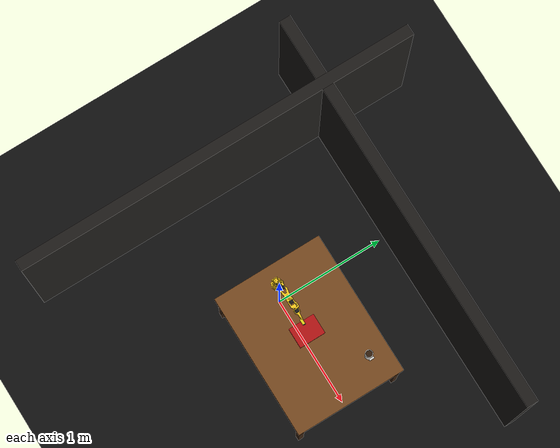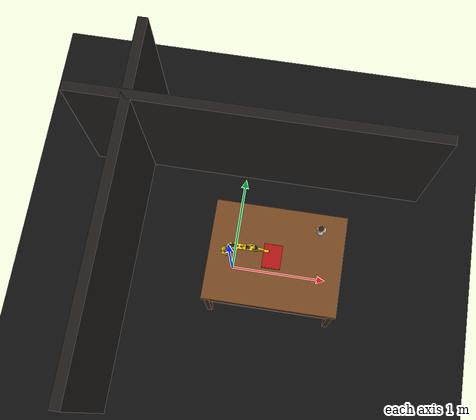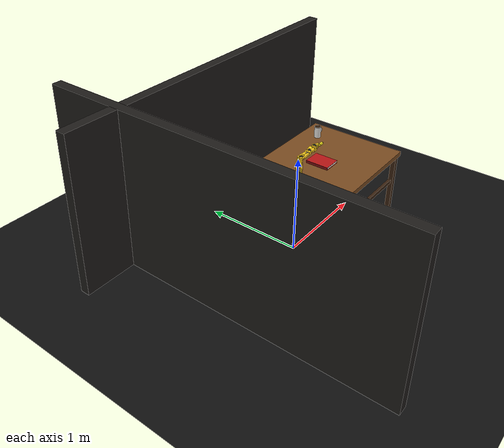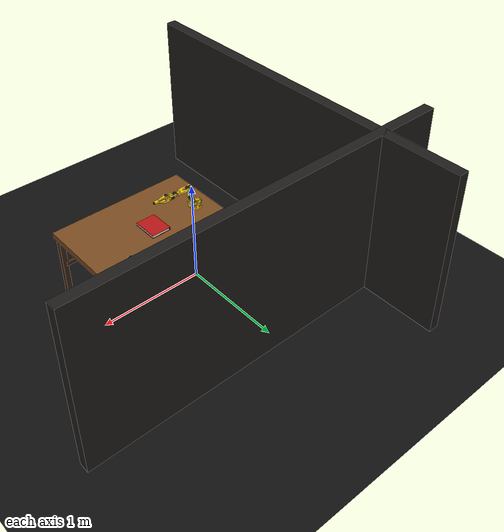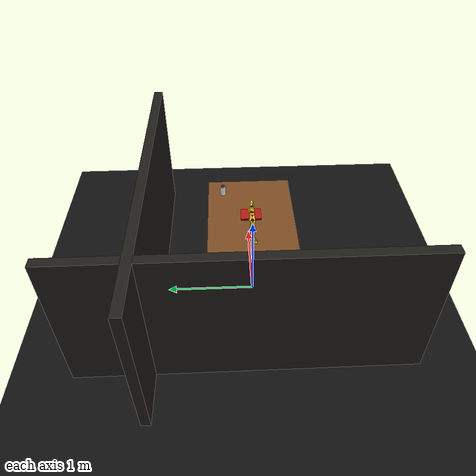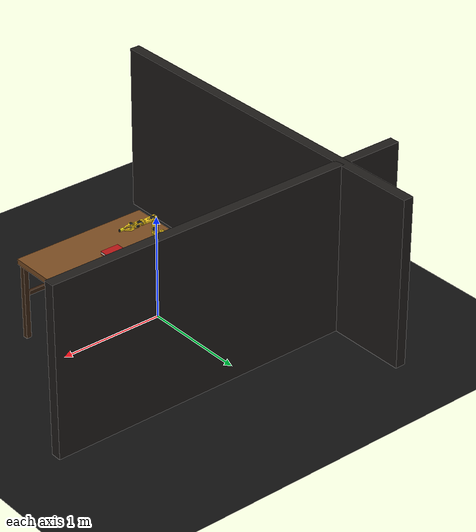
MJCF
<?xml version="1.0" ?>
<mujoco model="so101_lantern_scene">

  <compiler angle="radian" meshdir="assets" autolimits="true"/>
  <option gravity="0 0 -9.81" timestep="0.002"/>

  <!-- Near-zero ambient so flashlight is the only real light source -->
  <visual>
    <headlight ambient="0.1 0.1 0.1" diffuse="0.2 0.2 0.2"/>
    <map shadowclip="1" shadowscale="0.5"/>
    <quality shadowsize="4096"/>
  </visual>

  <default>
    <default class="so101_new_calib">
      <joint damping="1" frictionloss="0.1" armature="0.005"/>
      <position kp="50"/>
      <default class="visual">
        <geom type="mesh" contype="0" conaffinity="0" group="2"/>
      </default>
      <default class="collision">
        <geom group="3"/>
      </default>
    </default>
    <default class="sts3215">
      <geom contype="0" conaffinity="0"/>
      <joint damping="0.60" frictionloss="0.052" armature="0.028"/>
      <position kp="998.22" kv="2.731" forcerange="-2.94 2.94"/>
    </default>
    <default class="backlash">
      <joint damping="0.01" frictionloss="0" armature="0.01" limited="true"
             range="-0.008726646259971648 0.008726646259971648"/>
    </default>
  </default>

  <asset>
    <mesh file="waveshare_mounting_plate_so101_v2.stl"/>
    <mesh file="sts3215_03a_v1.stl"/>
    <mesh file="motor_holder_so101_base_v1.stl"/>
    <mesh file="wrist_roll_follower_so101_v1.stl"/>
    <mesh file="moving_jaw_so101_v1.stl"/>
    <mesh file="base_motor_holder_so101_v1.stl"/>
    <mesh file="upper_arm_so101_v1.stl"/>
    <mesh file="wrist_roll_pitch_so101_v2.stl"/>
    <mesh file="under_arm_so101_v1.stl"/>
    <mesh file="rotation_pitch_so101_v1.stl"/>
    <mesh file="motor_holder_so101_wrist_v1.stl"/>
    <mesh file="sts3215_03a_no_horn_v1.stl"/>
    <mesh file="base_so101_v2.stl"/>

    <!-- Robot materials -->
    <material name="base_motor_holder_so101_v1_material" rgba="1 0.82 0.12 1"/>
    <material name="base_so101_v2_material"              rgba="1 0.82 0.12 1"/>
    <material name="sts3215_03a_v1_material"             rgba="0.1 0.1 0.1 1"/>
    <material name="waveshare_mounting_plate_so101_v2_material" rgba="1 0.82 0.12 1"/>
    <material name="motor_holder_so101_base_v1_material" rgba="1 0.82 0.12 1"/>
    <material name="rotation_pitch_so101_v1_material"    rgba="1 0.82 0.12 1"/>
    <material name="upper_arm_so101_v1_material"         rgba="1 0.82 0.12 1"/>
    <material name="under_arm_so101_v1_material"         rgba="1 0.82 0.12 1"/>
    <material name="motor_holder_so101_wrist_v1_material" rgba="1 0.82 0.12 1"/>
    <material name="sts3215_03a_no_horn_v1_material"     rgba="0.1 0.1 0.1 1.0"/>
    <material name="wrist_roll_pitch_so101_v2_material"  rgba="1 0.82 0.12 1"/>
    <material name="wrist_roll_follower_so101_v1_material" rgba="1 0.82 0.12 1"/>
    <material name="moving_jaw_so101_v1_material"        rgba="1 0.82 0.12 1"/>

    <!-- Scene materials -->
    <texture name="tex_wood" type="2d" builtin="checker"
             rgb1="0.52 0.32 0.15" rgb2="0.44 0.27 0.11"
             width="512" height="512" mark="random" markrgb="0.38 0.23 0.09"/>
    <material name="mat_wood"      texture="tex_wood" texrepeat="4 4"
              specular="0.18" shininess="0.4" reflectance="0.08"/>
    <material name="mat_wood_dark" rgba="0.22 0.13 0.06 1"
              specular="0.08" shininess="0.15"/>

    <texture name="tex_floor" type="2d" builtin="checker"
             rgb1="0.08 0.08 0.08" rgb2="0.05 0.05 0.05" width="512" height="512"/>
    <material name="mat_floor" texture="tex_floor" texrepeat="10 10"
              specular="0.03" shininess="0.05"/>

    <!-- Book — closed -->
    <material name="mat_book_cover"  rgba="0.72 0.08 0.08 1"
              specular="0.15" shininess="0.3" reflectance="0.04"/>
    <material name="mat_book_spine"  rgba="0.48 0.05 0.05 1"
              specular="0.10" shininess="0.2"/>
    <material name="mat_book_pages"  rgba="0.95 0.93 0.87 1"
              specular="0.05" shininess="0.05"/>

    <!-- Book — open pages (bright so flashlight shows well) -->
    <material name="mat_open_pages"  rgba="0.99 0.98 0.95 1"
              specular="0.12" shininess="0.15" reflectance="0.06"/>
    <material name="mat_open_cover"  rgba="0.72 0.08 0.08 1"
              specular="0.15" shininess="0.3"/>

    <!-- Cup -->
    <material name="mat_ceramic" rgba="0.90 0.89 0.87 1"
              specular="0.40" shininess="0.7" reflectance="0.12"/>
    <material name="mat_coffee"  rgba="0.20 0.12 0.05 1"
              specular="0.45" shininess="0.9" reflectance="0.18"/>

    <!-- Lantern -->
    <material name="mat_lantern"   rgba="0.95 0.88 0.10 1"
              specular="0.35" shininess="0.5"/>
    <material name="mat_lens_off"  rgba="0.18 0.18 0.15 1"
              specular="0.20" shininess="0.4"/>
    <material name="mat_lens_on"   rgba="1.0 0.97 0.82 1"
              emission="1.0" specular="0.6" shininess="0.95"/>

    <material name="mat_wall" rgba="0.12 0.11 0.10 1"
              specular="0.02" shininess="0.02"/>
  </asset>

  <worldbody>

    <!-- ── Floor ── -->
    <geom name="floor" type="plane" size="5 5 0.1"
          material="mat_floor" friction="0.8 0.05 0.05"
          contype="1" conaffinity="1"/>

    <!-- ── Back wall ── -->
    <geom name="wall_back" type="box" pos="0.10 1.10 0.80"
          size="1.8 0.05 0.82" material="mat_wall"
          contype="0" conaffinity="0"/>
    <geom name="wall_left" type="box" pos="-1.10 0.10 0.80"
          size="0.05 1.8 0.82" material="mat_wall"
          contype="0" conaffinity="0"/>

    <geom name="table_top" type="box"
          pos="0.45 0.0 0.750" size="0.65 0.50 0.025"
          material="mat_wood" friction="0.8 0.05 0.05"
          contype="1" conaffinity="1"/>
    <!-- legs -->
    <geom name="leg_fl" type="box" pos="-0.16 -0.46 0.362" size="0.024 0.024 0.362" material="mat_wood_dark" contype="1" conaffinity="1"/>
    <geom name="leg_fr" type="box" pos=" 1.06 -0.46 0.362" size="0.024 0.024 0.362" material="mat_wood_dark" contype="1" conaffinity="1"/>
    <geom name="leg_bl" type="box" pos="-0.16  0.46 0.362" size="0.024 0.024 0.362" material="mat_wood_dark" contype="1" conaffinity="1"/>
    <geom name="leg_br" type="box" pos=" 1.06  0.46 0.362" size="0.024 0.024 0.362" material="mat_wood_dark" contype="1" conaffinity="1"/>
    <geom name="rail_l" type="box" pos="0.45 -0.45 0.44"   size="0.60 0.014 0.020" material="mat_wood_dark" contype="0" conaffinity="0"/>
    <geom name="rail_r" type="box" pos="0.45  0.45 0.44"   size="0.60 0.014 0.020" material="mat_wood_dark" contype="0" conaffinity="0"/>

    <!-- ── CLOSED BOOK
         table top = 0.775
         book half-thickness = 0.014 → centre z = 0.789
         book is in FRONT of robot: x=0.40, y=0.0
    ── -->
    <body name="book_red" pos="0.42 0.0 0.789">
      <freejoint/>
      <geom name="br_cover_top" type="box" size="0.090 0.118 0.0015"
            pos="0 0  0.0125" material="mat_book_cover" mass="0.04"
            contype="0" conaffinity="0"/>
      <geom name="br_cover_bot" type="box" size="0.090 0.118 0.0015"
            pos="0 0 -0.0125" material="mat_book_cover" mass="0.04"
            contype="0" conaffinity="0"/>
      <geom name="br_spine" type="box" size="0.004 0.118 0.013"
            pos="-0.086 0 0" material="mat_book_spine" mass="0.01"
            contype="0" conaffinity="0"/>
      <geom name="br_pages" type="box" size="0.084 0.115 0.011"
            pos="0.003 0 0" material="mat_book_pages" mass="0.10"/>
      <!-- invisible solid collision box — rests on table, cannot be pushed through -->
      <geom name="br_col" type="box" size="0.090 0.118 0.014"
            rgba="0 0 0 0" mass="0" friction="0.8 0.05 0.05"
            contype="1" conaffinity="1"/>
    </body>

    <!-- ── OPEN BOOK (same footprint, starts fully invisible) ── -->
    <body name="book_open" pos="0.42 0.0 0.778">
      <freejoint/>
      <!-- left page -->
      <geom name="bo_left"    type="box" size="0.090 0.118 0.002"
            pos="-0.046 0 0.002" rgba="0.99 0.98 0.95 0"
            mass="0.01" contype="0" conaffinity="0"/>
      <!-- right page -->
      <geom name="bo_right"   type="box" size="0.090 0.118 0.002"
            pos=" 0.046 0 0.002" rgba="0.99 0.98 0.95 0"
            mass="0.01" contype="0" conaffinity="0"/>
      <!-- spine groove -->
      <geom name="bo_spine"   type="box" size="0.005 0.118 0.003"
            pos="0 0 0.001" rgba="0.50 0.06 0.06 0"
            mass="0.01" contype="0" conaffinity="0"/>
      <!-- left cover (lying flat under page) -->
      <geom name="bo_cvr_l"   type="box" size="0.090 0.118 0.0015"
            pos="-0.046 0 -0.003" rgba="0.72 0.08 0.08 0"
            mass="0.01" contype="0" conaffinity="0"/>
      <!-- right cover -->
      <geom name="bo_cvr_r"   type="box" size="0.090 0.118 0.0015"
            pos=" 0.046 0 -0.003" rgba="0.72 0.08 0.08 0"
            mass="0.01" contype="0" conaffinity="0"/>
      <!-- solid collision so it stays on table -->
      <geom name="bo_col"     type="box" size="0.092 0.120 0.006"
            rgba="0 0 0 0" mass="0.15" friction="0.8 0.05 0.05"
            contype="1" conaffinity="1"/>
    </body>

    <!-- ── Coffee cup (far corner) ── -->
    <body name="cup" pos="0.85 0.32 0.833">
      <freejoint/>
      <geom type="cylinder" size="0.034 0.058" material="mat_ceramic"
            mass="0.28" friction="0.9 0.05 0.05" contype="1" conaffinity="1"/>
      <geom type="cylinder" size="0.028 0.002" pos="0 0 0.057"
            material="mat_coffee" mass="0.001" contype="0" conaffinity="0"/>
      <geom type="box" size="0.007 0.022 0.018" pos="0.041 0 0.010"
            material="mat_ceramic" mass="0.001" contype="0" conaffinity="0"/>
    </body>

    <!-- Scene camera — lateral para ver la escena completa -->
    <camera name="overview" pos="0.60 -1.10 1.30"
            xyaxes="0.90 0.44 0  -0.28 0.57 0.77"/>

    <!-- Camara cenital — mero arriba de la mesa apuntando hacia abajo -->
    <camera name="top_cam"
            pos="0.45 0.0 1.45"
            xyaxes="1 0 0  0 1 0"/>

    <body name="base" pos="-0.05 0.0 0.775" quat="1 0 0 0" childclass="so101_new_calib">
      <inertial pos="0.0137179 -5.19711e-05 0.0334843" mass="0.147"
                fullinertia="0.000114686 0.000136117 0.000130364 -4.59787e-07 4.97151e-06 9.75275e-08"/>
      <geom type="mesh" class="visual" pos="-0.00636471 -9.94414e-05 -0.0024" quat="0.5 0.5 0.5 0.5"
            mesh="base_motor_holder_so101_v1" material="base_motor_holder_so101_v1_material"/>
      <geom type="mesh" class="visual" pos="-0.00636471 -8.97657e-09 -0.0024" quat="0.5 0.5 0.5 0.5"
            mesh="base_so101_v2" material="base_so101_v2_material"/>
      <geom type="mesh" class="visual" pos="0.0263353 -8.97657e-09 0.0437"
            quat="1 -2.85511e-16 -9.64433e-17 6.12908e-16"
            mesh="sts3215_03a_v1" material="sts3215_03a_v1_material"/>
      <geom type="mesh" class="visual" pos="-0.0309827 -0.000199441 0.0474" quat="0.5 0.5 0.5 0.5"
            mesh="waveshare_mounting_plate_so101_v2" material="waveshare_mounting_plate_so101_v2_material"/>
      <site group="3" name="baseframe" pos="8.67362e-19 9.55596e-18 3.46945e-18"
            quat="1 -8.17396e-19 3.78392e-17 2.22045e-16"/>

      <body name="shoulder" pos="0.0388353 -8.97657e-09 0.0624"
            quat="3.56167e-16 1.22818e-15 -1 -4.14635e-16">
        <joint axis="0 0 1" name="shoulder_pan" type="hinge"
               range="-1.9198621771937616 1.9198621771937634" class="sts3215"/>
        <inertial pos="-0.0307604 -1.66727e-05 -0.0252713" mass="0.100006"
                  fullinertia="8.3759e-05 8.10403e-05 2.39783e-05 7.55525e-08 -1.16342e-06 1.54663e-07"/>
        <geom type="mesh" class="visual"    pos="-0.0303992 0.000422241 -0.0417" quat="0.5 0.5 0.5 -0.5" mesh="sts3215_03a_v1" material="sts3215_03a_v1_material"/>
        <geom type="mesh" class="collision" pos="-0.0303992 0.000422241 -0.0417" quat="0.5 0.5 0.5 -0.5" mesh="sts3215_03a_v1" material="sts3215_03a_v1_material"/>
        <geom type="mesh" class="visual"    pos="-0.0675992 -0.000177759 0.0158499" quat="0.5 0.5 -0.5 0.5" mesh="motor_holder_so101_base_v1" material="motor_holder_so101_base_v1_material"/>
        <geom type="mesh" class="collision" pos="-0.0675992 -0.000177759 0.0158499" quat="0.5 0.5 -0.5 0.5" mesh="motor_holder_so101_base_v1" material="motor_holder_so101_base_v1_material"/>
        <geom type="mesh" class="visual"    pos="0.0122008 2.22413e-05 0.0464" quat="0.707107 -0.707107 -0 8.3163e-34" mesh="rotation_pitch_so101_v1" material="rotation_pitch_so101_v1_material"/>
        <geom type="mesh" class="collision" pos="0.0122008 2.22413e-05 0.0464" quat="0.707107 -0.707107 -0 8.3163e-34" mesh="rotation_pitch_so101_v1" material="rotation_pitch_so101_v1_material"/>

        <body name="upper_arm" pos="-0.0303992 -0.0182778 -0.0542" quat="0.5 -0.5 -0.5 -0.5">
          <joint axis="0 0 1" name="shoulder_lift" type="hinge"
                 range="-1.7453292519943224 1.7453292519943366" class="sts3215"/>
          <inertial pos="-0.0898471 -0.00838224 0.0184089" mass="0.103"
                    fullinertia="4.08002e-05 0.000147318 0.000142487 -1.97819e-05 -4.03016e-08 8.97326e-09"/>
          <geom type="mesh" class="visual"    pos="-0.11257 -0.0155 0.0187" quat="4.56308e-16 -0.707107 0.707107 -1.37383e-16" mesh="sts3215_03a_v1" material="sts3215_03a_v1_material"/>
          <geom type="mesh" class="collision" pos="-0.11257 -0.0155 0.0187" quat="4.56308e-16 -0.707107 0.707107 -1.37383e-16" mesh="sts3215_03a_v1" material="sts3215_03a_v1_material"/>
          <geom type="mesh" class="visual"    pos="-0.065085 0.012 0.0182" quat="0 1 0 0" mesh="upper_arm_so101_v1" material="upper_arm_so101_v1_material"/>
          <geom type="mesh" class="collision" pos="-0.065085 0.012 0.0182" quat="0 1 0 0" mesh="upper_arm_so101_v1" material="upper_arm_so101_v1_material"/>

          <body name="lower_arm" pos="-0.11257 -0.028 1.73763e-16"
                quat="0.707107 -5.98613e-17 -2.58051e-17 0.707107">
            <joint axis="0 0 1" name="elbow_flex" type="hinge"
                   range="-1.69 1.69" class="sts3215"/>
            <inertial pos="-0.0980701 0.00324376 0.0182831" mass="0.104"
                      fullinertia="2.87438e-05 0.000159844 0.00014529 7.41152e-06 1.26409e-06 -4.90188e-08"/>
            <geom type="mesh" class="visual"    pos="-0.0648499 -0.032 0.0182" quat="0 1 0 0" mesh="under_arm_so101_v1" material="under_arm_so101_v1_material"/>
            <geom type="mesh" class="collision" pos="-0.0648499 -0.032 0.0182" quat="0 1 0 0" mesh="under_arm_so101_v1" material="under_arm_so101_v1_material"/>
            <geom type="mesh" class="visual"    pos="-0.0648499 -0.032 0.018" quat="3.92687e-16 -1 -1.9186e-15 -6.38378e-16" mesh="motor_holder_so101_wrist_v1" material="motor_holder_so101_wrist_v1_material"/>
            <geom type="mesh" class="collision" pos="-0.0648499 -0.032 0.018" quat="3.92687e-16 -1 -1.9186e-15 -6.38378e-16" mesh="motor_holder_so101_wrist_v1" material="motor_holder_so101_wrist_v1_material"/>
            <geom type="mesh" class="visual"    pos="-0.1224 0.0052 0.0187" quat="7.21645e-16 1.56949e-15 1 -3.33067e-16" mesh="sts3215_03a_v1" material="sts3215_03a_v1_material"/>
            <geom type="mesh" class="collision" pos="-0.1224 0.0052 0.0187" quat="7.21645e-16 1.56949e-15 1 -3.33067e-16" mesh="sts3215_03a_v1" material="sts3215_03a_v1_material"/>

            <body name="wrist" pos="-0.1349 0.0052 3.62355e-17"
                  quat="0.707107 9.58722e-16 -7.51313e-16 -0.707107">
              <joint axis="0 0 1" name="wrist_flex" type="hinge"
                     range="-1.6580628494556928 1.6580627293335335" class="sts3215"/>
              <inertial pos="-0.000103312 -0.0386143 0.0281156" mass="0.079"
                        fullinertia="3.68263e-05 2.5391e-05 2.1e-05 1.7893e-08 -5.28128e-08 3.6412e-06"/>
              <geom type="mesh" class="visual"    pos="8.32667e-17 -0.0424 0.0306" quat="0.5 0.5 0.5 -0.5" mesh="sts3215_03a_no_horn_v1" material="sts3215_03a_no_horn_v1_material"/>
              <geom type="mesh" class="collision" pos="8.32667e-17 -0.0424 0.0306" quat="0.5 0.5 0.5 -0.5" mesh="sts3215_03a_no_horn_v1" material="sts3215_03a_no_horn_v1_material"/>
              <geom type="mesh" class="visual"    pos="0 -0.028 0.0181" quat="0.5 -0.5 -0.5 -0.5" mesh="wrist_roll_pitch_so101_v2" material="wrist_roll_pitch_so101_v2_material"/>
              <geom type="mesh" class="collision" pos="0 -0.028 0.0181" quat="0.5 -0.5 -0.5 -0.5" mesh="wrist_roll_pitch_so101_v2" material="wrist_roll_pitch_so101_v2_material"/>

              <body name="gripper" pos="5.55112e-17 -0.0611 0.0181"
                    quat="0.0172091 -0.0172091 0.706897 0.706897">
                <joint axis="0 0 1" name="wrist_roll" type="hinge"
                       range="-2.7438472969992493 2.841206309382605" class="sts3215"/>
                <inertial pos="0.000213627 0.000245138 -0.025187" mass="0.087"
                          fullinertia="2.75087e-05 4.33657e-05 3.45059e-05 -3.35241e-07 -5.7352e-06 -5.17847e-08"/>
                <geom type="mesh" class="visual"    pos="0.0077 0.0001 -0.0234" quat="0.707107 -0.707107 1.66015e-15 6.45094e-15" mesh="sts3215_03a_v1" material="sts3215_03a_v1_material"/>
                <geom type="mesh" class="collision" pos="0.0077 0.0001 -0.0234" quat="0.707107 -0.707107 1.66015e-15 6.45094e-15" mesh="sts3215_03a_v1" material="sts3215_03a_v1_material"/>
                <geom type="mesh" class="visual"    pos="8.32667e-17 -0.000218214 0.000949706" quat="0 1 0 0" mesh="wrist_roll_follower_so101_v1" material="wrist_roll_follower_so101_v1_material"/>
                <geom type="mesh" class="collision" pos="8.32667e-17 -0.000218214 0.000949706" quat="0 1 0 0" mesh="wrist_roll_follower_so101_v1" material="wrist_roll_follower_so101_v1_material"/>

                <site group="3" name="gripperframe"
                      pos="-0.0079 -0.000218121 -0.0981274"
                      quat="0.707107 -0 0.707107 -2.37788e-17"/>

                <!-- Lantern body -->
                <geom name="lantern_body" type="cylinder" size="0.013 0.024"
                      pos="0 -0.008 -0.118" material="mat_lantern"
                      contype="0" conaffinity="0" group="2"/>
                <!-- Lens — Python swaps material via rgba -->
                <geom name="lantern_lens" type="cylinder" size="0.011 0.004"
                      pos="0 -0.008 -0.143" material="mat_lens_off"
                      contype="0" conaffinity="0" group="2"/>
                <!-- Beam reference site -->
                <site name="lantern_beam" pos="0 -0.008 -0.150"
                      quat="0.707107 0 0.707107 0" size="0.005"
                      rgba="1 1 0.5 0.0" group="1"/>

                <!-- Flashlight — mode=fixed moves with gripper automatically -->
                <!-- dir="0 0 -1" in local gripper frame = straight out of lens  -->
                <light name="flashlight"
                       pos="0 -0.008 -0.143"
                       dir="0 1 0"
                       mode="fixed"
                       diffuse="0 0 0"
                       cutoff="42"
                       exponent="5"
                       castshadow="true"/>

                <body name="moving_jaw_so101_v1" pos="0.0202 0.0188 -0.0234"
                      quat="0.707107 0.707107 -1.85362e-08 1.85362e-08">
                  <joint axis="0 0 1" name="gripper" type="hinge"
                         range="-0.17453297762778586 1.7453291995659765" class="sts3215"/>
                  <inertial pos="-0.00157495 -0.0300244 0.0192755" mass="0.012"
                            fullinertia="6.61427e-06 1.89032e-06 5.28738e-06 -3.19807e-07 -5.90717e-09 -1.09945e-07"/>
                  <geom type="mesh" class="visual"    pos="-5.55112e-17 -5.55112e-17 0.0189" quat="1 -0 3.00524e-16 -2.00834e-17" mesh="moving_jaw_so101_v1" material="moving_jaw_so101_v1_material"/>
                  <geom type="mesh" class="collision" pos="-5.55112e-17 -5.55112e-17 0.0189" quat="1 -0 3.00524e-16 -2.00834e-17" mesh="moving_jaw_so101_v1" material="moving_jaw_so101_v1_material"/>
                </body>
              </body>
            </body>
          </body>
        </body>
      </body>
    </body>

  </worldbody>

  <actuator>
    <position class="sts3215" name="shoulder_pan"  joint="shoulder_pan"  forcerange="-3.35 3.35" ctrlrange="-1.91986 1.91986"/>
    <position class="sts3215" name="shoulder_lift" joint="shoulder_lift" forcerange="-3.35 3.35" ctrlrange="-1.74533 1.74533"/>
    <position class="sts3215" name="elbow_flex"    joint="elbow_flex"    forcerange="-3.35 3.35" ctrlrange="-1.69 1.69"/>
    <position class="sts3215" name="wrist_flex"    joint="wrist_flex"    forcerange="-3.35 3.35" ctrlrange="-1.65806 1.65806"/>
    <position class="sts3215" name="wrist_roll"    joint="wrist_roll"    forcerange="-3.35 3.35" ctrlrange="-2.74385 2.84121"/>
    <position class="sts3215" name="gripper"       joint="gripper"       forcerange="-3.35 3.35" ctrlrange="-0.17453 1.74533"/>
  </actuator>

  <equality/>
</mujoco>
